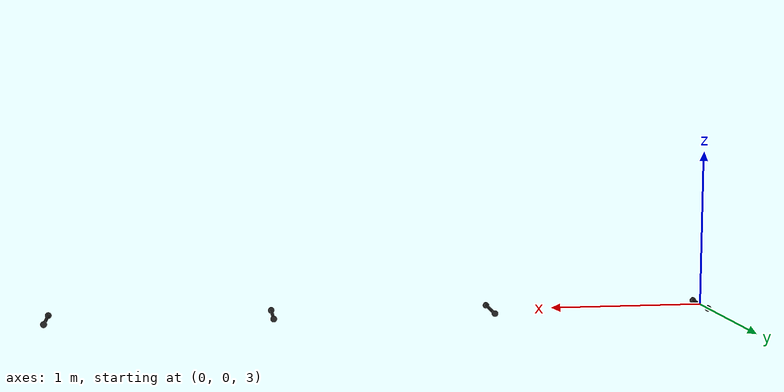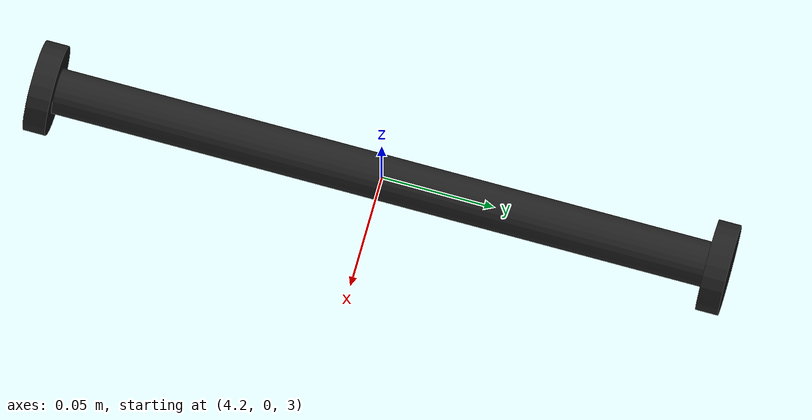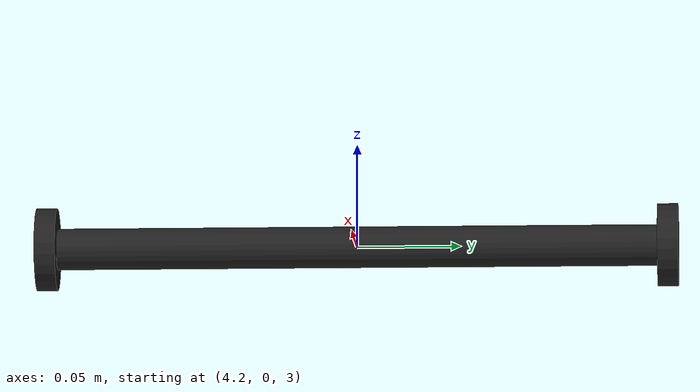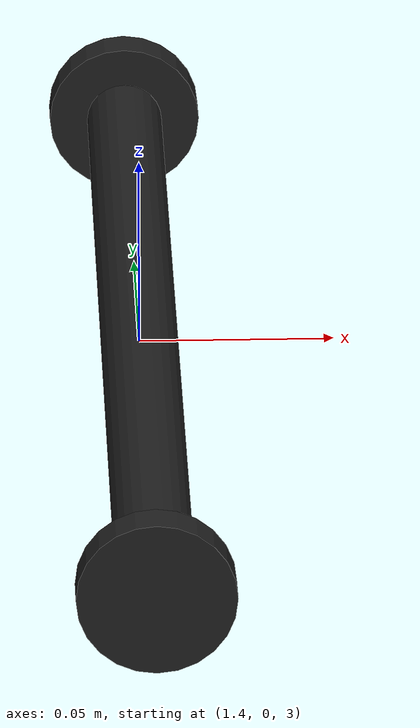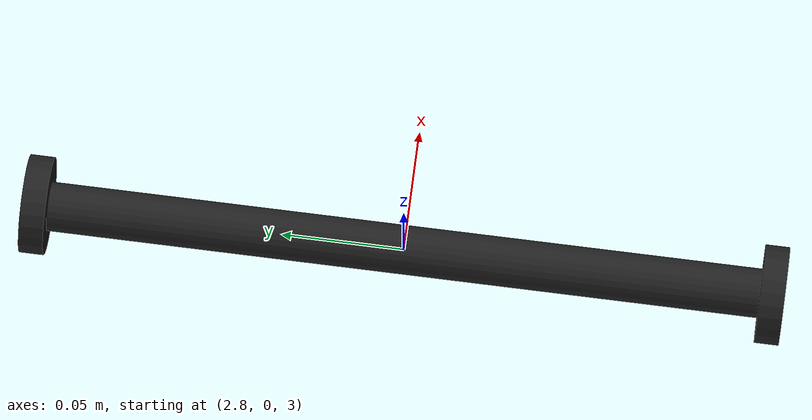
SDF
<sdf version='1.7'>
  <model name='ladder'>
    <link name='ladder__link_0'>
      <inertial>
        <pose>0 0 0 0 -0 0</pose>
        <mass>1</mass>
        <inertia>
          <ixx>0.163333</ixx>
          <ixy>0</ixy>
          <ixz>0</ixz>
          <iyy>0</iyy>
          <iyz>0</iyz>
          <izz>0</izz>
        </inertia>
      </inertial>
      <collision name='ladder__link_0_collision'>
        <pose>0 0 3 1.57 -0 0</pose>
        <geometry>
          <cylinder>
            <length>0.3</length>
            <radius>0.01</radius>
          </cylinder>
        </geometry>
        <surface>
          <contact>
            <ode>
              <collsion>
                <kp>0</kp>
                <kd>0</kd>
              </collsion>
              <spring_reference>0.0</spring_reference>
              <spring_stiffness>100000.0</spring_stiffness>
            </ode>
          </contact>
          <friction>
            <ode>
              <mu>0.000001</mu>
              <mu2>0.0000001</mu2>
            </ode>
            <slip1>0</slip1>
            <slip2>0</slip2>
          </friction>
        </surface>
      </collision>
      <collision name='ladder__link_0_collision_1'>
        <pose>0 0.15 3 1.57 -0 0</pose>
        <geometry>
          <cylinder>
            <length>0.01</length>
            <radius>0.02</radius>
          </cylinder>
        </geometry>
        <surface>
          <contact>
            <ode>
              <collsion>
                <kp>0</kp>
                <kd>0</kd>
              </collsion>
              <spring_reference>0.0</spring_reference>
              <spring_stiffness>100000.0</spring_stiffness>
            </ode>
          </contact>
          <friction>
            <ode>
              <mu>0.000001</mu>
              <mu2>0.0000001</mu2>
            </ode>
            <slip1>0</slip1>
            <slip2>0</slip2>
          </friction>
        </surface>
      </collision>
      <collision name='ladder__link_0_collision_2'>
        <pose>0 -0.15 3 1.57 -0 0</pose>
        <geometry>
          <cylinder>
            <length>0.01</length>
            <radius>0.02</radius>
          </cylinder>
        </geometry>
        <surface>
          <contact>
            <ode>
              <collsion>
                <kp>0</kp>
                <kd>0</kd>
              </collsion>
              <spring_reference>0.0</spring_reference>
              <spring_stiffness>100000.0</spring_stiffness>
            </ode>
          </contact>
          <friction>
            <ode>
              <mu>0.000001</mu>
              <mu2>0.0000001</mu2>
            </ode>
            <slip1>0</slip1>
            <slip2>0</slip2>
          </friction>
        </surface>
      </collision>
      <visual name='ladder__link_0_visual'>
        <pose>0 0 3 1.57 -0 0</pose>
        <geometry>
          <cylinder>
            <length>0.3</length>
            <radius>0.01</radius>
          </cylinder>
        </geometry>
        <material>
          <script>
            <name>Gazebo/Black</name>
            <uri>file://media/materials/scripts/gazebo.material</uri>
          </script>
        </material>
      </visual>
      <visual name='ladder__link_0_visual_1'>
        <pose>0 0.15 3 1.57 -0 0</pose>
        <geometry>
          <cylinder>
            <length>0.01</length>
            <radius>0.02</radius>
          </cylinder>
        </geometry>
        <material>
          <script>
            <name>Gazebo/Black</name>
            <uri>file://media/materials/scripts/gazebo.material</uri>
          </script>
        </material>
      </visual>
      <visual name='ladder__link_0_visual_2'>
        <pose>0 -0.15 3 1.57 -0 0</pose>
        <geometry>
          <cylinder>
            <length>0.01</length>
            <radius>0.02</radius>
          </cylinder>
        </geometry>
        <material>
          <script>
            <name>Gazebo/Black</name>
            <uri>file://media/materials/scripts/gazebo.material</uri>
          </script>
        </material>
      </visual>
    </link>
    <joint name='l_b_1' type='revolute'>
      <pose relative_to='ladder__link_0'>0 0 0 0 -0 0</pose>
      <parent>ladder__link_0</parent>
      <child>ladder__link_1</child>
      <axis>
        <xyz>1 0 0</xyz>
        <limit>
          <lower>0</lower>
          <upper>0</upper>
          <effort>0</effort>
          <velocity>0</velocity>
        </limit>
        <dynamics>
          <spring_reference>0</spring_reference>
          <spring_stiffness>0</spring_stiffness>
        </dynamics>
      </axis>
    </joint>
    <link name='ladder__link_1'>
      <pose relative_to='l_b_1'>0 0 0 0 -0 0</pose>
      <inertial>
        <pose>0 0 0 0 -0 0</pose>
        <mass>1</mass>
        <inertia>
          <ixx>0.163333</ixx>
          <ixy>0</ixy>
          <ixz>0</ixz>
          <iyy>0</iyy>
          <iyz>0</iyz>
          <izz>0</izz>
        </inertia>
      </inertial>
      <collision name='ladder__link_1_collision'>
        <pose>1.4 0 3 1.57 -0 0</pose>
        <geometry>
          <cylinder>
            <length>0.3</length>
            <radius>0.01</radius>
          </cylinder>
        </geometry>
        <surface>
          <contact>
            <ode>
              <collsion>
                <kp>0</kp>
                <kd>0</kd>
              </collsion>
              <spring_reference>0.0</spring_reference>
              <spring_stiffness>100000.0</spring_stiffness>
            </ode>
          </contact>
          <friction>
            <ode>
              <mu>0.000001</mu>
              <mu2>0.0000001</mu2>
            </ode>
            <slip1>0</slip1>
            <slip2>0</slip2>
          </friction>
        </surface>
      </collision>
      <collision name='ladder__link_1_collision_1'>
        <pose>1.4 0.15 3 1.57 -0 0</pose>
        <geometry>
          <cylinder>
            <length>0.01</length>
            <radius>0.02</radius>
          </cylinder>
        </geometry>
        <surface>
          <contact>
            <ode>
              <collsion>
                <kp>0</kp>
                <kd>0</kd>
              </collsion>
              <spring_reference>0.0</spring_reference>
              <spring_stiffness>100000.0</spring_stiffness>
            </ode>
          </contact>
          <friction>
            <ode>
              <mu>0.000001</mu>
              <mu2>0.0000001</mu2>
            </ode>
            <slip1>0</slip1>
            <slip2>0</slip2>
          </friction>
        </surface>
      </collision>
      <collision name='ladder__link_1_collision_2'>
        <pose>1.4 -0.15 3 1.57 -0 0</pose>
        <geometry>
          <cylinder>
            <length>0.01</length>
            <radius>0.02</radius>
          </cylinder>
        </geometry>
        <surface>
          <contact>
            <ode>
              <collsion>
                <kp>0</kp>
                <kd>0</kd>
              </collsion>
              <spring_reference>0.0</spring_reference>
              <spring_stiffness>100000.0</spring_stiffness>
            </ode>
          </contact>
          <friction>
            <ode>
              <mu>0.000001</mu>
              <mu2>0.0000001</mu2>
            </ode>
            <slip1>0</slip1>
            <slip2>0</slip2>
          </friction>
        </surface>
      </collision>
      <visual name='ladder__link_1_visual'>
        <pose>1.4 0 3 1.57 -0 0</pose>
        <geometry>
          <cylinder>
            <length>0.3</length>
            <radius>0.01</radius>
          </cylinder>
        </geometry>
        <material>
          <script>
            <name>Gazebo/Black</name>
            <uri>file://media/materials/scripts/gazebo.material</uri>
          </script>
        </material>
      </visual>
      <visual name='ladder__link_1_visual_1'>
        <pose>1.4 0.15 3 1.57 -0 0</pose>
        <geometry>
          <cylinder>
            <length>0.01</length>
            <radius>0.02</radius>
          </cylinder>
        </geometry>
        <material>
          <script>
            <name>Gazebo/Black</name>
            <uri>file://media/materials/scripts/gazebo.material</uri>
          </script>
        </material>
      </visual>
      <visual name='ladder__link_1_visual_2'>
        <pose>1.4 -0.15 3 1.57 -0 0</pose>
        <geometry>
          <cylinder>
            <length>0.01</length>
            <radius>0.02</radius>
          </cylinder>
        </geometry>
        <material>
          <script>
            <name>Gazebo/Black</name>
            <uri>file://media/materials/scripts/gazebo.material</uri>
          </script>
        </material>
      </visual>
    </link>
    <joint name='l_b_2' type='revolute'>
      <pose relative_to='ladder__link_0'>0 0 0 0 -0 0</pose>
      <parent>ladder__link_0</parent>
      <child>ladder__link_2</child>
      <axis>
        <xyz>1 0 0</xyz>
        <limit>
          <lower>0</lower>
          <upper>0</upper>
          <effort>0</effort>
          <velocity>0</velocity>
        </limit>
        <dynamics>
          <spring_reference>0</spring_reference>
          <spring_stiffness>0</spring_stiffness>
        </dynamics>
      </axis>
    </joint>
    <link name='ladder__link_2'>
      <pose relative_to='l_b_2'>0 0 0 0 -0 0</pose>
      <inertial>
        <pose>0 0 0 0 -0 0</pose>
        <mass>1</mass>
        <inertia>
          <ixx>0.163333</ixx>
          <ixy>0</ixy>
          <ixz>0</ixz>
          <iyy>0</iyy>
          <iyz>0</iyz>
          <izz>0</izz>
        </inertia>
      </inertial>
      <collision name='ladder__link_2_collision'>
        <pose>2.8 0 3 1.57 -0 0</pose>
        <geometry>
          <cylinder>
            <length>0.3</length>
            <radius>0.01</radius>
          </cylinder>
        </geometry>
        <surface>
          <contact>
            <ode>
              <collsion>
                <kp>0</kp>
                <kd>0</kd>
              </collsion>
              <spring_reference>0.0</spring_reference>
              <spring_stiffness>100000.0</spring_stiffness>
            </ode>
          </contact>
          <friction>
            <ode>
              <mu>0.000001</mu>
              <mu2>0.0000001</mu2>
            </ode>
            <slip1>0</slip1>
            <slip2>0</slip2>
          </friction>
        </surface>
      </collision>
      <collision name='ladder__link_2_collision_1'>
        <pose>2.8 0.15 3 1.57 -0 0</pose>
        <geometry>
          <cylinder>
            <length>0.01</length>
            <radius>0.02</radius>
          </cylinder>
        </geometry>
        <surface>
          <contact>
            <ode>
              <collsion>
                <kp>0</kp>
                <kd>0</kd>
              </collsion>
              <spring_reference>0.0</spring_reference>
              <spring_stiffness>100000.0</spring_stiffness>
            </ode>
          </contact>
          <friction>
            <ode>
              <mu>0.000001</mu>
              <mu2>0.0000001</mu2>
            </ode>
            <slip1>0</slip1>
            <slip2>0</slip2>
          </friction>
        </surface>
      </collision>
      <collision name='ladder__link_2_collision_2'>
        <pose>2.8 -0.15 3 1.57 -0 0</pose>
        <geometry>
          <cylinder>
            <length>0.01</length>
            <radius>0.02</radius>
          </cylinder>
        </geometry>
        <surface>
          <contact>
            <ode>
              <collsion>
                <kp>0</kp>
                <kd>0</kd>
              </collsion>
              <spring_reference>0.0</spring_reference>
              <spring_stiffness>100000.0</spring_stiffness>
            </ode>
          </contact>
          <friction>
            <ode>
              <mu>0.000001</mu>
              <mu2>0.0000001</mu2>
            </ode>
            <slip1>0</slip1>
            <slip2>0</slip2>
          </friction>
        </surface>
      </collision>
      <visual name='ladder__link_2_visual'>
        <pose>2.8 0 3 1.57 -0 0</pose>
        <geometry>
          <cylinder>
            <length>0.3</length>
            <radius>0.01</radius>
          </cylinder>
        </geometry>
        <material>
          <script>
            <name>Gazebo/Black</name>
            <uri>file://media/materials/scripts/gazebo.material</uri>
          </script>
        </material>
      </visual>
      <visual name='ladder__link_2_visual_1'>
        <pose>2.8 0.15 3 1.57 -0 0</pose>
        <geometry>
          <cylinder>
            <length>0.01</length>
            <radius>0.02</radius>
          </cylinder>
        </geometry>
        <material>
          <script>
            <name>Gazebo/Black</name>
            <uri>file://media/materials/scripts/gazebo.material</uri>
          </script>
        </material>
      </visual>
      <visual name='ladder__link_2_visual_2'>
        <pose>2.8 -0.15 3 1.57 -0 0</pose>
        <geometry>
          <cylinder>
            <length>0.01</length>
            <radius>0.02</radius>
          </cylinder>
        </geometry>
        <material>
          <script>
            <name>Gazebo/Black</name>
            <uri>file://media/materials/scripts/gazebo.material</uri>
          </script>
        </material>
      </visual>
    </link>
    <joint name='l_b_3' type='revolute'>
      <pose relative_to='ladder__link_0'>0 0 0 0 -0 0</pose>
      <parent>ladder__link_0</parent>
      <child>ladder__link_3</child>
      <axis>
        <xyz>1 0 0</xyz>
        <limit>
          <lower>0</lower>
          <upper>0</upper>
          <effort>0</effort>
          <velocity>0</velocity>
        </limit>
        <dynamics>
          <spring_reference>0</spring_reference>
          <spring_stiffness>0</spring_stiffness>
        </dynamics>
      </axis>
    </joint>
    <link name='ladder__link_3'>
      <pose relative_to='l_b_3'>0 0 0 0 -0 0</pose>
      <inertial>
        <pose>0 0 0 0 -0 0</pose>
        <mass>1</mass>
        <inertia>
          <ixx>0.163333</ixx>
          <ixy>0</ixy>
          <ixz>0</ixz>
          <iyy>0</iyy>
          <iyz>0</iyz>
          <izz>0</izz>
        </inertia>
      </inertial>
      <collision name='ladder__link_3_collision'>
        <pose>4.2 0 3 1.57 -0 0</pose>
        <geometry>
          <cylinder>
            <length>0.3</length>
            <radius>0.01</radius>
          </cylinder>
        </geometry>
        <surface>
          <contact>
            <ode>
              <collsion>
                <kp>0</kp>
                <kd>0</kd>
              </collsion>
              <spring_reference>0.0</spring_reference>
              <spring_stiffness>100000.0</spring_stiffness>
            </ode>
          </contact>
          <friction>
            <ode>
              <mu>0.000001</mu>
              <mu2>0.0000001</mu2>
            </ode>
            <slip1>0</slip1>
            <slip2>0</slip2>
          </friction>
        </surface>
      </collision>
      <collision name='ladder__link_3_collision_1'>
        <pose>4.2 0.15 3 1.57 -0 0</pose>
        <geometry>
          <cylinder>
            <length>0.01</length>
            <radius>0.02</radius>
          </cylinder>
        </geometry>
        <surface>
          <contact>
            <ode>
              <collsion>
                <kp>0</kp>
                <kd>0</kd>
              </collsion>
              <spring_reference>0.0</spring_reference>
              <spring_stiffness>100000.0</spring_stiffness>
            </ode>
          </contact>
          <friction>
            <ode>
              <mu>0.000001</mu>
              <mu2>0.0000001</mu2>
            </ode>
            <slip1>0</slip1>
            <slip2>0</slip2>
          </friction>
        </surface>
      </collision>
      <collision name='ladder__link_3_collision_2'>
        <pose>4.2 -0.15 3 1.57 -0 0</pose>
        <geometry>
          <cylinder>
            <length>0.01</length>
            <radius>0.02</radius>
          </cylinder>
        </geometry>
        <surface>
          <contact>
            <ode>
              <collsion>
                <kp>0</kp>
                <kd>0</kd>
              </collsion>
              <spring_reference>0.0</spring_reference>
              <spring_stiffness>100000.0</spring_stiffness>
            </ode>
          </contact>
          <friction>
            <ode>
              <mu>0.000001</mu>
              <mu2>0.0000001</mu2>
            </ode>
            <slip1>0</slip1>
            <slip2>0</slip2>
          </friction>
        </surface>
      </collision>
      <visual name='ladder__link_3_visual'>
        <pose>4.2 0 3 1.57 -0 0</pose>
        <geometry>
          <cylinder>
            <length>0.3</length>
            <radius>0.01</radius>
          </cylinder>
        </geometry>
        <material>
          <script>
            <name>Gazebo/Black</name>
            <uri>file://media/materials/scripts/gazebo.material</uri>
          </script>
        </material>
      </visual>
      <visual name='ladder__link_3_visual_1'>
        <pose>4.2 0.15 3 1.57 -0 0</pose>
        <geometry>
          <cylinder>
            <length>0.01</length>
            <radius>0.02</radius>
          </cylinder>
        </geometry>
        <material>
          <script>
            <name>Gazebo/Black</name>
            <uri>file://media/materials/scripts/gazebo.material</uri>
          </script>
        </material>
      </visual>
      <visual name='ladder__link_3_visual_2'>
        <pose>4.2 -0.15 3 1.57 -0 0</pose>
        <geometry>
          <cylinder>
            <length>0.01</length>
            <radius>0.02</radius>
          </cylinder>
        </geometry>
        <material>
          <script>
            <name>Gazebo/Black</name>
            <uri>file://media/materials/scripts/gazebo.material</uri>
          </script>
        </material>
      </visual>
    </link>
    <static>1</static>
  </model>
</sdf>
